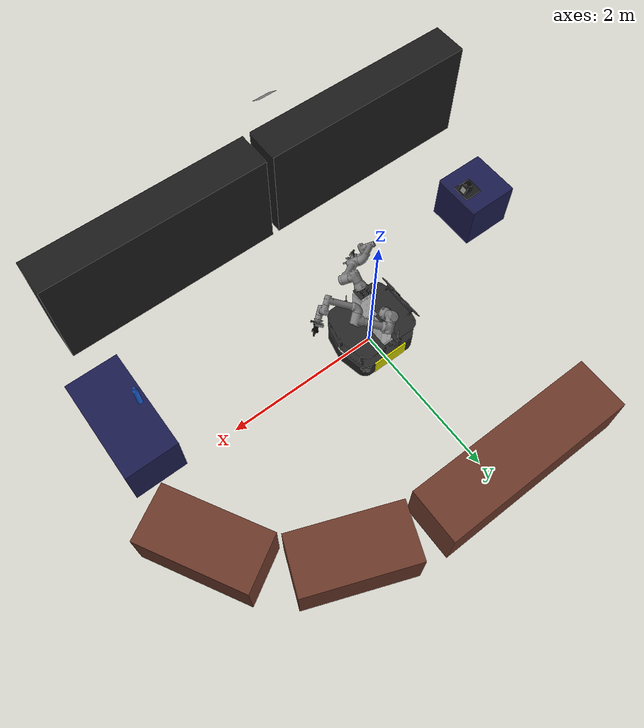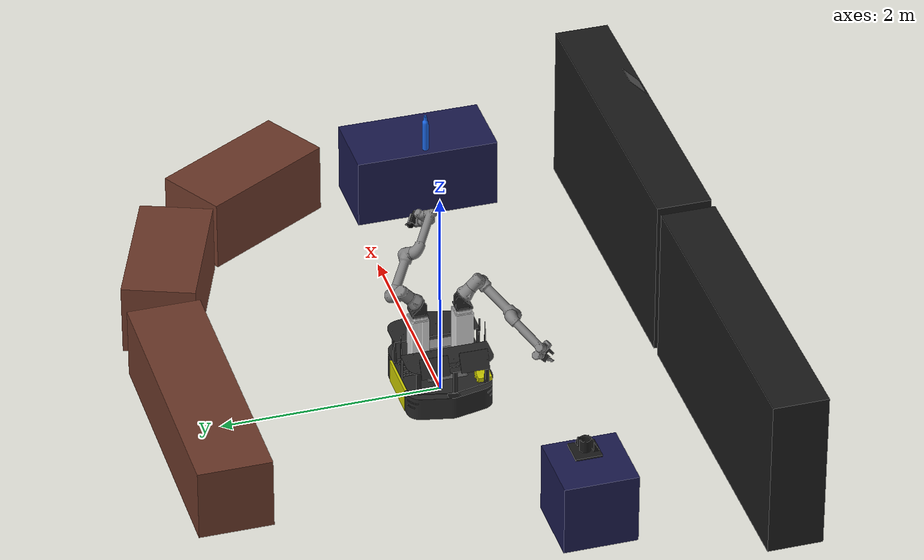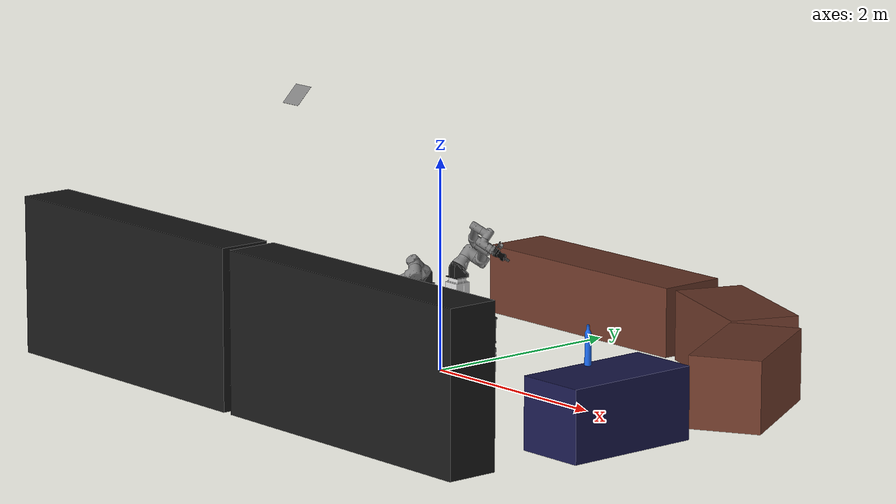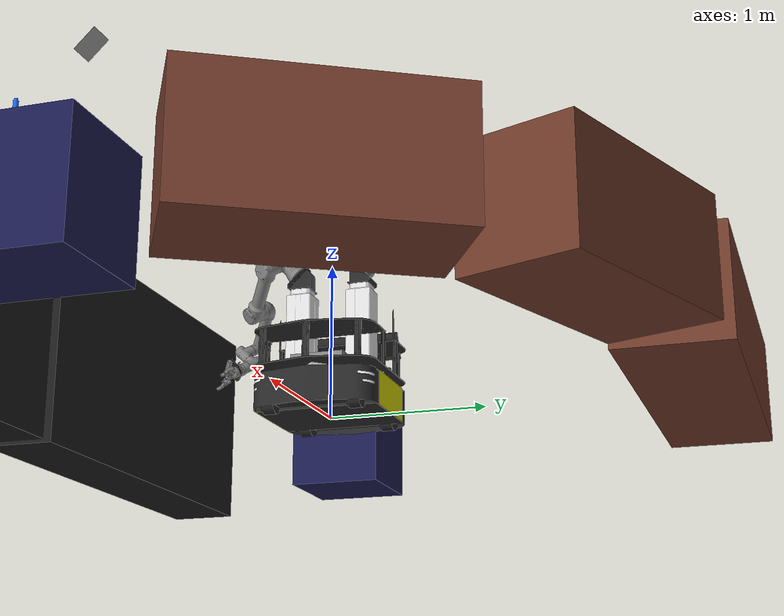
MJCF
<mujoco model="phoebe">
  <compiler angle="radian" meshdir="assets/" texturedir="assets/"/>

  <asset>
    <mesh name="body" content_type="model/obj" file="full/body.obj"/>
    <mesh name="side-cover" content_type="model/obj" file="full/side-cover.obj"/>
    <mesh name="end-cover" content_type="model/obj" file="full/end-cover.obj"/>
    <mesh name="lights" content_type="model/obj" file="full/lights.obj"/>
    <mesh name="axle" content_type="model/obj" file="full/axle.obj"/>
    <mesh name="top" content_type="model/obj" file="full/top.obj"/>
    <mesh name="rocker" content_type="model/obj" file="full/rocker.obj"/>
    <mesh name="wheel" content_type="model/obj" file="full/wheel.obj"/>
    <mesh name="lift_rails" content_type="model/obj" file="full/lift_rails.obj"/>
    <mesh name="shelf" content_type="model/obj" file="full/shelf.obj"/>
    <mesh name="monitor_hinge_base" content_type="model/obj" file="full/monitor_hinge_base.obj"/>
    <mesh name="monitor_hinge_top" content_type="model/obj" file="full/monitor_hinge_top.obj"/>
    <mesh name="monitor" content_type="model/obj" file="full/monitor.obj"/>
    <mesh name="scu" content_type="model/obj" file="full/scu.obj"/>
    <mesh name="autec_receiver" content_type="model/obj" file="full/autec_receiver.obj"/>
    <mesh name="wifi_antenna" content_type="model/obj" file="full/wifi_antenna.obj"/>
    <mesh name="autec_antenna" content_type="model/obj" file="full/autec_antenna.obj"/>
    <mesh name="lift_low_500mm" content_type="model/obj" file="full/lift_low_500mm.obj"/>
    <mesh name="lift_mid_500mm" content_type="model/obj" file="full/lift_mid_500mm.obj"/>
    <mesh name="lift_high_500mm" content_type="model/obj" file="full/lift_high_500mm.obj"/>
    <mesh name="arm_mount" content_type="model/obj" file="full/arm_mount.obj"/>
    <mesh name="base" content_type="model/obj" file="full/base.obj"/>
    <mesh name="shoulder" content_type="model/obj" file="full/shoulder.obj"/>
    <mesh name="upperarm" content_type="model/obj" file="full/upperarm.obj"/>
    <mesh name="forearm" content_type="model/obj" file="full/forearm.obj"/>
    <mesh name="wrist1" content_type="model/obj" file="full/wrist1.obj"/>
    <mesh name="wrist2" content_type="model/obj" file="full/wrist2.obj"/>
    <mesh name="wrist3" content_type="model/obj" file="full/wrist3.obj"/>
    <mesh name="mtc_robot_side" content_type="model/obj" file="full/mtc_robot_side.obj"/>
    <mesh name="mtc_effector_side" content_type="model/obj" file="full/mtc_effector_side.obj"/>
    <mesh name="ich-005_realsense_cable_mount_corr" content_type="model/obj" file="full/ich-005_realsense_cable_mount_corr.obj" scale="0.0254 0.0254 0.0254"/>
    <mesh name="robotiq_hande_cb_adapter" content_type="model/obj" file="full/robotiq_hande_cb_adapter.obj"/>
    <mesh name="robotiq_base" content_type="model/obj" file="full/robotiq_base.obj"/>
    <mesh name="left_knuckle" content_type="model/obj" file="full/left_knuckle.obj"/>
    <mesh name="right_knuckle" content_type="model/obj" file="full/right_knuckle.obj"/>
    <mesh name="left_finger" content_type="model/obj" file="full/left_finger.obj"/>
    <mesh name="right_finger" content_type="model/obj" file="full/right_finger.obj"/>
    <mesh name="left_inner_knuckle" content_type="model/obj" file="full/left_inner_knuckle.obj"/>
    <mesh name="right_inner_knuckle" content_type="model/obj" file="full/right_inner_knuckle.obj"/>
    <mesh name="left_finger_tip" content_type="model/obj" file="full/left_finger_tip.obj"/>
    <mesh name="right_finger_tip" content_type="model/obj" file="full/right_finger_tip.obj"/>
    <mesh name="hande" content_type="model/obj" file="full/hande.obj" scale="0.001 0.001 0.001"/>
    <mesh name="finger_1" content_type="model/obj" file="decomposed/finger_1/finger_1.obj" scale="0.001 0.001 0.001"/>
    <mesh name="cylinder_mockup_full_length_m" content_type="model/obj" file="full/cylinder_mockup_full_length_m.obj"/>
    <mesh name="cylinder_jig_m" content_type="model/obj" file="full/cylinder_jig_m.obj"/>
  </asset>

  <worldbody>
    <body name="base_link">
      <inertial pos="0.0151044 0.00165701 0.0943591" quat="0.717959 -0.0265943 -0.0142385 0.695432" mass="199.343" diaginertia="11.7956 10.8921 8.18537"/>
      <joint name="virtual_base_joint" type="free"/>
      <geom type="mesh" contype="0" conaffinity="0" group="1" density="0" rgba="0.15 0.15 0.15 1" mesh="body"/>
      <geom type="mesh" contype="0" conaffinity="0" group="1" density="0" rgba="0.8 0.8 0 1" mesh="side-cover"/>
      <geom pos="0 0 0" quat="0 0 0 1" type="mesh" contype="0" conaffinity="0" group="1" density="0" rgba="0.8 0.8 0 1" mesh="side-cover"/>
      <geom type="mesh" contype="0" conaffinity="0" group="1" density="0" rgba="0.15 0.15 0.15 1" mesh="end-cover"/>
      <geom pos="0 0 0" quat="0 0 0 1" type="mesh" contype="0" conaffinity="0" group="1" density="0" rgba="0.15 0.15 0.15 1" mesh="end-cover"/>
      <geom type="mesh" contype="0" conaffinity="0" group="1" density="0" rgba="1 1 1 1" mesh="lights"/>
      <geom pos="0 0 0" quat="0 0 0 1" type="mesh" contype="0" conaffinity="0" group="1" density="0" rgba="0.15 0.15 0.15 1" mesh="lights"/>
      <geom pos="0 0 0.05" quat="0.707107 0 0.707107 0" type="mesh" contype="0" conaffinity="0" group="1" density="0" rgba="0.15 0.15 0.15 1" mesh="axle"/>
      <geom pos="0.319 0 0.05" quat="0.5 0.5 0.5 0.5" type="mesh" contype="0" conaffinity="0" group="1" density="0" rgba="0.15 0.15 0.15 1" mesh="rocker"/>
      <geom pos="-0.319 0 0.05" quat="0.5 0.5 0.5 0.5" type="mesh" contype="0" conaffinity="0" group="1" density="0" rgba="0.15 0.15 0.15 1" mesh="rocker"/>
      <geom size="0.2465 0.2465 0.0275" pos="0 0 0.2475" quat="0.92388 0 0 0.382683" type="box" contype="0" conaffinity="0" group="1" density="0" rgba="0.8 0.8 0.8 1"/>
      <geom type="mesh" contype="0" conaffinity="0" group="1" density="0" rgba="0.15 0.15 0.15 1" mesh="top"/>
      <geom pos="0 0 0.28" quat="1 0 0 0" type="mesh" contype="0" conaffinity="0" group="1" density="0" rgba="0.15 0.15 0.15 1" mesh="lift_rails"/>
      <geom pos="0 0 0.28" quat="1 0 0 0" type="mesh" contype="0" conaffinity="0" group="1" density="0" rgba="0.15 0.15 0.15 1" mesh="shelf"/>
      <geom pos="0 0 0.28" quat="0 0 0 1" type="mesh" contype="0" conaffinity="0" group="1" density="0" rgba="0.15 0.15 0.15 1" mesh="shelf"/>
      <geom pos="-0.4 0 0.52635" quat="1 0 0 0" type="mesh" contype="0" conaffinity="0" group="1" density="0" rgba="0.15 0.15 0.15 1" mesh="monitor_hinge_base"/>
      <geom pos="-0.4 0 0.52635" quat="0.932327 0 0.361615 0" type="mesh" contype="0" conaffinity="0" group="1" density="0" rgba="0.15 0.15 0.15 1" mesh="monitor_hinge_top"/>
      <geom pos="-0.422796 0.18 0.560706" quat="0.932327 0 0.361615 0" type="mesh" contype="0" conaffinity="0" group="1" density="0" rgba="0.15 0.15 0.15 1" mesh="monitor"/>
      <geom pos="-0.422796 -0.18 0.560706" quat="0.932327 0 0.361615 0" type="mesh" contype="0" conaffinity="0" group="1" density="0" rgba="0.15 0.15 0.15 1" mesh="monitor"/>
      <geom pos="-0.18187 0 0.28" quat="1 0 0 0" type="mesh" contype="0" conaffinity="0" group="1" density="0" mesh="scu"/>
      <geom pos="0.18187 0 0.28" quat="0 0 0 1" type="mesh" contype="0" conaffinity="0" group="1" density="0" mesh="scu"/>
      <geom pos="-0.26 -0.29909 0.28" quat="1 0 0 0" type="mesh" contype="0" conaffinity="0" group="1" density="0" rgba="0.8 0.8 0 1" mesh="autec_receiver"/>
      <geom pos="-0.086 -0.384 0.5" quat="1 0 0 0" type="mesh" contype="0" conaffinity="0" group="1" density="0" rgba="0.15 0.15 0.15 1" mesh="wifi_antenna"/>
      <geom pos="-0.086 0.384 0.5" quat="1 0 0 0" type="mesh" contype="0" conaffinity="0" group="1" density="0" rgba="0.15 0.15 0.15 1" mesh="wifi_antenna"/>
      <geom pos="0.0845 -0.384 0.5" quat="1 0 0 0" type="mesh" contype="0" conaffinity="0" group="1" density="0" rgba="0.15 0.15 0.15 1" mesh="autec_antenna"/>
      <geom size="0.1 0.1 0.0075" pos="0 0.201 0.3275" type="box" contype="0" conaffinity="0" group="1" density="0"/>
      <geom pos="0 0.201 0.5732" type="mesh" contype="0" conaffinity="0" group="1" density="0" rgba="0.85 0.85 0.85 1" mesh="lift_low_500mm"/>
      <geom size="0.1 0.1 0.0075" pos="0 -0.201 0.3275" type="box" contype="0" conaffinity="0" group="1" density="0"/>
      <geom pos="0 -0.201 0.5732" type="mesh" contype="0" conaffinity="0" group="1" density="0" rgba="0.85 0.85 0.85 1" mesh="lift_low_500mm"/>
      <geom size="1.5 0.25 0.75" pos="1.55 -2.25 0.75" type="box" contype="0" conaffinity="0" group="1" density="0" rgba="0.1 0.1 0.1 1"/>
      <geom size="1.5 0.25 0.75" pos="-1.55 -2.25 0.75" type="box" contype="0" conaffinity="0" group="1" density="0" rgba="0.1 0.1 0.1 1"/>
      <geom size="0.333 0.666 0.333" pos="3 -0.666 0.333" type="box" contype="0" conaffinity="0" group="1" density="0" rgba="0.1 0.1 0.3 1"/>
      <geom size="0.333 0.333 0.333" pos="-2.25 -0.666 0.333" type="box" contype="0" conaffinity="0" group="1" density="0" rgba="0.1 0.1 0.3 1"/>
      <geom size="0.333 0.666 0.333" pos="3 1 0.333" quat="0.965926 0 0 0.258819" type="box" contype="0" conaffinity="0" group="1" density="0" rgba="0.42 0.22 0.16 1"/>
      <geom size="0.333 0.666 0.333" pos="1.85 2 0.333" quat="0.825336 0 0 0.564642" type="box" contype="0" conaffinity="0" group="1" density="0" rgba="0.42 0.22 0.16 1"/>
      <geom size="0.333 1.25 0.333" pos="-0.25 2.25 0.333" quat="0.707388 0 0 0.706825" type="box" contype="0" conaffinity="0" group="1" density="0" rgba="0.42 0.22 0.16 1"/>
      <geom pos="2.75 -0.666 0.665" quat="1 0 0 0" type="mesh" contype="0" conaffinity="0" group="1" density="0" rgba="0.1 0.4 0.9 1" mesh="cylinder_mockup_full_length_m"/>
      <geom pos="-2.1 -0.666 0.667" quat="-0.706824 0.00112618 4.48402e-07 -0.707388" type="mesh" contype="0" conaffinity="0" group="1" density="0" rgba="0.1 0.1 0.1 1" mesh="cylinder_jig_m"/>
      <geom size="0.0365 0.0365 0.001" pos="-2.10003 -0.754895 0.733142" quat="-0.000690986 0.000397094 -0.867819 -0.496881" type="box" contype="0" conaffinity="0" group="1" density="0"/>
      <geom size="0.0365 0.0365 0.001" pos="-2.01111 -0.665824 0.733142" quat="-0.612831 -0.352193 -0.35345 -0.612757" type="box" contype="0" conaffinity="0" group="1" density="0"/>
      <geom size="0.107 0.107 0.001" pos="0.134059 -1.78874 2.82267" quat="1.2259e-06 -5.07498e-07 -0.382499 0.923956" type="box" contype="0" conaffinity="0" group="1" density="0"/>
      <body name="front_left_wheel_link" pos="0.319 0.2755 0.05">
        <inertial pos="0 0 0" quat="0.707107 0 0 0.707107" mass="2.5" diaginertia="0.00720101 0.00490071 0.00490071"/>
        <joint name="front_left_wheel_joint" pos="0 0 0" axis="0 1 0"/>
        <geom quat="0.707107 0.707107 0 0" type="mesh" contype="0" conaffinity="0" group="1" density="0" rgba="0.15 0.15 0.15 1" mesh="wheel"/>
      </body>
      <body name="front_right_wheel_link" pos="0.319 -0.2755 0.05">
        <inertial pos="0 0 0" quat="0.707107 0 0 0.707107" mass="2.5" diaginertia="0.00720101 0.00490071 0.00490071"/>
        <joint name="front_right_wheel_joint" pos="0 0 0" axis="0 1 0"/>
        <geom quat="0.707107 0.707107 0 0" type="mesh" contype="0" conaffinity="0" group="1" density="0" rgba="0.15 0.15 0.15 1" mesh="wheel"/>
      </body>
      <body name="rear_left_wheel_link" pos="-0.319 0.2755 0.05">
        <inertial pos="0 0 0" quat="0.707107 0 0 0.707107" mass="2.5" diaginertia="0.00720101 0.00490071 0.00490071"/>
        <joint name="rear_left_wheel_joint" pos="0 0 0" axis="0 1 0"/>
        <geom quat="0.707107 0.707107 0 0" type="mesh" contype="0" conaffinity="0" group="1" density="0" rgba="0.15 0.15 0.15 1" mesh="wheel"/>
      </body>
      <body name="rear_right_wheel_link" pos="-0.319 -0.2755 0.05">
        <inertial pos="0 0 0" quat="0.707107 0 0 0.707107" mass="2.5" diaginertia="0.00720101 0.00490071 0.00490071"/>
        <joint name="rear_right_wheel_joint" pos="0 0 0" axis="0 1 0"/>
        <geom quat="0.707107 0.707107 0 0" type="mesh" contype="0" conaffinity="0" group="1" density="0" rgba="0.15 0.15 0.15 1" mesh="wheel"/>
      </body>
      <body name="left_ewellix_lift_higher_link" pos="0 0.201 0.61">
        <inertial pos="-0.00482427 -0.148669 0.00425385" quat="0.720984 0.692716 -0.015659 -0.00896105" mass="9.32488" diaginertia="0.405814 0.305322 0.130687"/>
        <joint name="left_ewellix_lift_lower_to_higher" pos="0 0 0" axis="0 0 1" type="slide" range="0 0.5" actuatorfrcrange="-1000 1000"/>
        <geom type="mesh" contype="0" conaffinity="0" group="1" density="0" rgba="0.85 0.85 0.85 1" mesh="lift_high_500mm"/>
        <geom pos="0 0 0.245" quat="1 0 0 0" type="mesh" contype="0" conaffinity="0" group="1" density="0" rgba="0.15 0.15 0.15 1" mesh="arm_mount"/>
        <geom pos="0.00991665 0.0112464 0.346581" quat="-0.856843 0.350748 0.134633 0.353087" type="mesh" contype="0" conaffinity="0" group="1" density="0" mesh="base"/>
        <body name="left_ewellix_lift_middle_link" pos="0 0 -0.0303">
          <inertial pos="0 0 0" mass="5.4116" diaginertia="0.11963 0.11963 0.0330997"/>
          <joint name="left_middle_mimic_higher" pos="0 0 0" axis="0 0 -1" type="slide" range="0 0.25" actuatorfrcrange="-1000 1000"/>
          <geom type="mesh" contype="0" conaffinity="0" group="1" density="0" rgba="0.85 0.85 0.85 1" mesh="lift_mid_500mm"/>
        </body>
        <body name="left_ur_arm_shoulder_link" pos="0.0126802 0.124615 0.463459" quat="0.353086 -0.134633 0.350748 0.856843">
          <inertial pos="0 -0.00193 -0.02561" quat="0.560239 0.250606 -0.316559 0.72327" mass="3.761" diaginertia="0.00703079 0.0070003 0.00602478"/>
          <joint name="left_ur_arm_shoulder_pan_joint" pos="0 0 0" axis="0 0 1" range="-6.28319 6.28319" actuatorfrcrange="-150 150"/>
          <geom quat="0 0 0 1" type="mesh" contype="0" conaffinity="0" group="1" density="0" mesh="shoulder"/>
          <body name="left_ur_arm_upper_arm_link" pos="0.000226782 0 0" quat="0.707115 0.707098 -9.55133e-07 -9.55157e-07">
            <inertial pos="-0.2125 0 0.11336" quat="0.500275 0.499641 0.500368 0.499716" mass="8.058" diaginertia="0.333881 0.332472 0.0150588"/>
            <joint name="left_ur_arm_shoulder_lift_joint" pos="0 0 0" axis="0 0 1" range="-6.28319 6.28319" actuatorfrcrange="-150 150"/>
            <geom pos="0 0 0.138" quat="0.5 0.5 -0.5 -0.5" type="mesh" contype="0" conaffinity="0" group="1" density="0" mesh="upperarm"/>
            <body name="left_ur_arm_forearm_link" pos="-0.425505 0 0" quat="1 2.07226e-05 -0.000262987 -7.61405e-08">
              <inertial pos="-0.2422 0 0.0265" quat="0.501301 0.498381 0.510711 0.489375" mass="2.846" diaginertia="0.0787927 0.0785102 0.00397103"/>
              <joint name="left_ur_arm_elbow_joint" pos="0 0 0" axis="0 0 1" range="-3.14159 3.14159" actuatorfrcrange="-150 150"/>
              <geom pos="0 0 0.007" quat="0.5 0.5 -0.5 -0.5" type="mesh" contype="0" conaffinity="0" group="1" density="0" mesh="forearm"/>
              <body name="left_ur_arm_wrist_1_link" pos="-0.392582 -4.63122e-05 0.133721" quat="1 0.000173166 0.000544517 1.77883e-06">
                <inertial pos="0 -0.01634 -0.0018" quat="0.960609 0.277707 0.00515042 -0.00913626" mass="1.37" diaginertia="0.00165502 0.00142363 0.00119868"/>
                <joint name="left_ur_arm_wrist_1_joint" pos="0 0 0" axis="0 0 1" range="-6.28319 6.28319" actuatorfrcrange="-28 28"/>
                <geom pos="0 0 -0.127" quat="0.707107 0.707107 0 0" type="mesh" contype="0" conaffinity="0" group="1" density="0" mesh="wrist1"/>
                <body name="left_ur_arm_wrist_2_link" pos="1.36989e-05 -0.0999777 8.48591e-05" quat="0.707407 0.706807 -4.64337e-08 -4.64731e-08">
                  <inertial pos="0 0.01634 -0.0018" quat="0.996652 -0.0779336 -0.00684629 -0.0237381" mass="1.3" diaginertia="0.00135637 0.00128607 0.00095814"/>
                  <joint name="left_ur_arm_wrist_2_joint" pos="0 0 0" axis="0 0 1" range="-6.28319 6.28319" actuatorfrcrange="-28 28"/>
                  <geom pos="0 0 -0.0997" quat="1 0 0 0" type="mesh" contype="0" conaffinity="0" group="1" density="0" mesh="wrist2"/>
                  <body name="left_ur_arm_wrist_3_link" pos="0.000106733 0.0996158 1.94962e-05" quat="-0.707176 0.707038 1.93623e-08 -1.93661e-08">
                    <inertial pos="0.000839754 -0.00316796 0.065463" quat="0.989723 0.0369367 -0.0056945 0.13803" mass="1.31087" diaginertia="0.0076687 0.00740859 0.00153548"/>
                    <joint name="left_ur_arm_wrist_3_joint" pos="0 0 0" axis="0 0 1" range="-6.28319 6.28319" actuatorfrcrange="-28 28"/>
                    <geom pos="0 0 -0.0989" quat="0.707107 0.707107 0 0" type="mesh" contype="0" conaffinity="0" group="1" density="0" mesh="wrist3"/>
                    <geom quat="0 0 0 1" type="mesh" contype="0" conaffinity="0" group="1" density="0" mesh="mtc_robot_side"/>
                    <geom pos="0 0 0.009" quat="0 0 0 1" type="mesh" contype="0" conaffinity="0" group="1" density="0" mesh="mtc_effector_side"/>
                    <geom pos="0 0 0.033" quat="-0.707107 0 0 0.707107" type="mesh" contype="0" conaffinity="0" group="1" density="0" rgba="0.1 0.1 0.1 1" mesh="ich-005_realsense_cable_mount_corr"/>
                    <geom size="0.012525 0.045 0.0125" pos="0.000178732 0.0759414 0.0578834" quat="-0.53321 0.471099 0.468121 0.524037" type="box" contype="0" conaffinity="0" group="1" density="0"/>
                    <geom pos="0 0 0.036" quat="-1 0 0 0" type="mesh" contype="0" conaffinity="0" group="1" density="0" rgba="0 0 0 1" mesh="robotiq_hande_cb_adapter"/>
                    <geom pos="0 0 0.047" quat="-1 0 0 0" type="mesh" contype="0" conaffinity="0" group="1" density="0" rgba="0 0 0 1" mesh="hande"/>
                    <body name="left_finger_1_link" pos="0.025 0 0.146" quat="0 0 0 -1">
                      <inertial pos="-0.02262 0.00759 0.00738" quat="0.871952 -0.0369732 0.211073 0.440205" mass="0.03804" diaginertia="1.22763e-05 1.22763e-05 1.22763e-05"/>
                      <joint name="left_finger_1_joint" pos="0 0 0" axis="1 0 0" type="slide" range="0 0.025" actuatorfrcrange="-130 130"/>
                      <geom type="mesh" contype="0" conaffinity="0" group="1" density="0" rgba="0.2 0.2 0.2 1" mesh="finger_1"/>
                    </body>
                    <body name="left_finger_2_link" pos="-0.025 0 0.146" quat="-1 0 0 0">
                      <inertial pos="0.02262 -0.00759 0.00738" quat="0.871952 0.0369732 -0.211073 0.440205" mass="0.03804" diaginertia="1.22763e-05 1.22763e-05 1.22763e-05"/>
                      <joint name="left_finger_2_joint" pos="0 0 0" axis="1 0 0" type="slide" range="0 0.025" actuatorfrcrange="-130 130"/>
                      <geom type="mesh" contype="0" conaffinity="0" group="1" density="0" rgba="0.2 0.2 0.2 1" mesh="finger_1"/>
                    </body>
                  </body>
                </body>
              </body>
            </body>
          </body>
        </body>
      </body>
      <body name="right_ewellix_lift_higher_link" pos="0 -0.201 0.61">
        <inertial pos="0.00637989 -0.148041 0.0049205" quat="0.723505 0.689931 0.0192834 0.0128102" mass="9.32488" diaginertia="0.403789 0.303364 0.130628"/>
        <joint name="right_ewellix_lift_lower_to_higher" pos="0 0 0" axis="0 0 1" type="slide" range="0 0.5" actuatorfrcrange="-1000 1000"/>
        <geom type="mesh" contype="0" conaffinity="0" group="1" density="0" rgba="0.85 0.85 0.85 1" mesh="lift_high_500mm"/>
        <geom pos="0 0 0.245" quat="0 0 0 1" type="mesh" contype="0" conaffinity="0" group="1" density="0" rgba="0.15 0.15 0.15 1" mesh="arm_mount"/>
        <geom pos="0.0114708 -0.0148729 0.345116" quat="-0.348645 -0.131976 -0.353915 0.857772" type="mesh" contype="0" conaffinity="0" group="1" density="0" mesh="base"/>
        <body name="right_ewellix_lift_middle_link" pos="0 0 -0.0303">
          <inertial pos="0 0 0" mass="5.4116" diaginertia="0.11963 0.11963 0.0330997"/>
          <joint name="right_middle_mimic_higher" pos="0 0 0" axis="0 0 -1" type="slide" range="0 0.25" actuatorfrcrange="-1000 1000"/>
          <geom type="mesh" contype="0" conaffinity="0" group="1" density="0" rgba="0.85 0.85 0.85 1" mesh="lift_mid_500mm"/>
        </body>
        <body name="right_ur_arm_shoulder_link" pos="0.0147855 -0.128643 0.461404" quat="0.857772 0.353915 -0.131976 0.348645">
          <inertial pos="0 -0.00193 -0.02561" quat="0.560239 0.250606 -0.316559 0.72327" mass="3.761" diaginertia="0.00703079 0.0070003 0.00602478"/>
          <joint name="right_ur_arm_shoulder_pan_joint" pos="0 0 0" axis="0 0 1" range="-6.28319 6.28319" actuatorfrcrange="-150 150"/>
          <geom quat="0 0 0 1" type="mesh" contype="0" conaffinity="0" group="1" density="0" mesh="shoulder"/>
          <body name="right_ur_arm_upper_arm_link" pos="7.08681e-05 0 0" quat="0.707305 0.706908 1.4235e-06 1.4243e-06">
            <inertial pos="-0.2125 0 0.11336" quat="0.500275 0.499641 0.500368 0.499716" mass="8.058" diaginertia="0.333881 0.332472 0.0150588"/>
            <joint name="right_ur_arm_shoulder_lift_joint" pos="0 0 0" axis="0 0 1" range="-6.28319 6.28319" actuatorfrcrange="-150 150"/>
            <geom pos="0 0 0.138" quat="0.5 0.5 -0.5 -0.5" type="mesh" contype="0" conaffinity="0" group="1" density="0" mesh="upperarm"/>
            <body name="right_ur_arm_forearm_link" pos="-0.425304 0 0" quat="1 9.70614e-05 0.000269354 4.69205e-07">
              <inertial pos="-0.2422 0 0.0265" quat="0.501301 0.498381 0.510711 0.489375" mass="2.846" diaginertia="0.0787927 0.0785102 0.00397103"/>
              <joint name="right_ur_arm_elbow_joint" pos="0 0 0" axis="0 0 1" range="-3.14159 3.14159" actuatorfrcrange="-150 150"/>
              <geom pos="0 0 0.007" quat="0.5 0.5 -0.5 -0.5" type="mesh" contype="0" conaffinity="0" group="1" density="0" mesh="forearm"/>
              <body name="right_ur_arm_wrist_1_link" pos="-0.392184 8.85386e-05 0.134008" quat="1 -0.000330347 0.000508859 -1.44648e-06">
                <inertial pos="0 -0.01634 -0.0018" quat="0.960609 0.277707 0.00515042 -0.00913626" mass="1.37" diaginertia="0.00165502 0.00142363 0.00119868"/>
                <joint name="right_ur_arm_wrist_1_joint" pos="0 0 0" axis="0 0 1" range="-6.28319 6.28319" actuatorfrcrange="-28 28"/>
                <geom pos="0 0 -0.127" quat="0.707107 0.707107 0 0" type="mesh" contype="0" conaffinity="0" group="1" density="0" mesh="wrist1"/>
                <body name="right_ur_arm_wrist_2_link" pos="3.88504e-05 -0.0998073 8.22332e-05" quat="0.707398 0.706815 2.04332e-07 2.045e-07">
                  <inertial pos="0 0.01634 -0.0018" quat="0.996652 -0.0779336 -0.00684629 -0.0237381" mass="1.3" diaginertia="0.00135637 0.00128607 0.00095814"/>
                  <joint name="right_ur_arm_wrist_2_joint" pos="0 0 0" axis="0 0 1" range="-6.28319 6.28319" actuatorfrcrange="-28 28"/>
                  <geom pos="0 0 -0.0997" quat="1 0 0 0" type="mesh" contype="0" conaffinity="0" group="1" density="0" mesh="wrist2"/>
                  <body name="right_ur_arm_wrist_3_link" pos="7.98405e-05 0.0996341 1.16486e-05" quat="-0.707148 0.707065 4.07248e-09 -4.07295e-09">
                    <inertial pos="0.000959276 -0.00363967 0.0520803" quat="0.986219 0.0493742 -0.011881 0.157459" mass="1.1102" diaginertia="0.0064241 0.00624497 0.00141296"/>
                    <joint name="right_ur_arm_wrist_3_joint" pos="0 0 0" axis="0 0 1" range="-6.28319 6.28319" actuatorfrcrange="-28 28"/>
                    <geom pos="0 0 -0.0989" quat="0.707107 0.707107 0 0" type="mesh" contype="0" conaffinity="0" group="1" density="0" mesh="wrist3"/>
                    <geom quat="0 0 0 1" type="mesh" contype="0" conaffinity="0" group="1" density="0" mesh="mtc_robot_side"/>
                    <geom pos="0 0 0.009" quat="0 0 0 1" type="mesh" contype="0" conaffinity="0" group="1" density="0" mesh="mtc_effector_side"/>
                    <geom pos="0 0 0.033" quat="-0.707107 0 0 0.707107" type="mesh" contype="0" conaffinity="0" group="1" density="0" rgba="0.1 0.1 0.1 1" mesh="ich-005_realsense_cable_mount_corr"/>
                    <geom size="0.012525 0.045 0.0125" pos="-0.00270487 0.0729183 0.0570653" quat="-0.53474 0.464316 0.473489 0.523709" type="box" contype="0" conaffinity="0" group="1" density="0"/>
                    <geom pos="0 0 0.036" quat="-1 0 0 0" type="mesh" contype="0" conaffinity="0" group="1" density="0" rgba="0 0 0 1" mesh="robotiq_hande_cb_adapter"/>
                    <geom pos="0 0 0.047" quat="-1 0 0 0" type="mesh" contype="0" conaffinity="0" group="1" density="0" mesh="robotiq_base"/>
                    <body name="right_robotiq_85_left_knuckle_link" pos="0.0306011 0 0.101905" quat="-1 0 0 0">
                      <inertial pos="0.0280921 -0.000550523 0.00570126" quat="0.699112 0.212074 0.213677 0.648544" mass="0.0564515" diaginertia="1.95637e-05 1.76663e-05 9.3792e-06"/>
                      <joint name="right_robotiq_85_left_knuckle_joint" pos="0 0 0" axis="0 -1 0" range="0 0.8" actuatorfrcrange="-50 50"/>
                      <geom type="mesh" contype="0" conaffinity="0" group="1" density="0" mesh="left_knuckle"/>
                      <geom pos="0.0315262 0 -0.00376347" type="mesh" contype="0" conaffinity="0" group="1" density="0" mesh="left_finger"/>
                      <body name="right_robotiq_85_left_finger_tip_link" pos="0.0371575 0 0.0434217">
                        <inertial pos="-0.0145671 -0.0008 0.016497" quat="0.977773 0 -0.209665 0" mass="0.0426859" diaginertia="1.20653e-05 1.19789e-05 2.64405e-06"/>
                        <joint name="right_robotiq_85_left_finger_tip_joint" pos="0 0 0" axis="0 -1 0"/>
                        <geom type="mesh" contype="0" conaffinity="0" group="1" density="0" mesh="left_finger_tip"/>
                      </body>
                    </body>
                    <body name="right_robotiq_85_right_knuckle_link" pos="-0.0306011 0 0.101905" quat="-1 0 0 0">
                      <inertial pos="-0.0280921 4.48872e-05 0.00570126" quat="0.669099 -0.212862 -0.212522 0.679581" mass="0.0564515" diaginertia="1.95514e-05 1.7665e-05 9.37296e-06"/>
                      <joint name="right_robotiq_85_right_knuckle_joint" pos="0 0 0" axis="0 -1 0" range="-0.8 0" actuatorfrcrange="-50 50"/>
                      <geom type="mesh" contype="0" conaffinity="0" group="1" density="0" mesh="right_knuckle"/>
                      <geom pos="-0.0315262 0 -0.00376347" type="mesh" contype="0" conaffinity="0" group="1" density="0" mesh="right_finger"/>
                      <body name="right_robotiq_85_right_finger_tip_link" pos="-0.0371575 0 0.0434217">
                        <inertial pos="0.0145671 5e-05 0.016497" quat="0.977773 0 0.209665 0" mass="0.0426859" diaginertia="1.20653e-05 1.19789e-05 2.64405e-06"/>
                        <joint name="right_robotiq_85_right_finger_tip_joint" pos="0 0 0" axis="0 -1 0"/>
                        <geom type="mesh" contype="0" conaffinity="0" group="1" density="0" mesh="right_finger_tip"/>
                      </body>
                    </body>
                    <body name="right_robotiq_85_left_inner_knuckle_link" pos="0.0127 0 0.10842" quat="-1 0 0 0">
                      <inertial pos="0.018977 0.00015001 0.022471" quat="0.939613 0 0.342237 0" mass="0.0296938" diaginertia="1.28757e-05 8.69056e-06 4.88712e-06"/>
                      <joint name="right_robotiq_85_left_inner_knuckle_joint" pos="0 0 0" axis="0 -1 0"/>
                      <geom type="mesh" contype="0" conaffinity="0" group="1" density="0" mesh="left_inner_knuckle"/>
                    </body>
                    <body name="right_robotiq_85_right_inner_knuckle_link" pos="-0.0127 0 0.10842" quat="-1 0 0 0">
                      <inertial pos="-0.0192682 5.001e-05 0.0222218" quat="0.936371 0 -0.351012 0" mass="0.0296938" diaginertia="1.2882e-05 8.69056e-06 4.88076e-06"/>
                      <joint name="right_robotiq_85_right_inner_knuckle_joint" pos="0 0 0" axis="0 -1 0"/>
                      <geom type="mesh" contype="0" conaffinity="0" group="1" density="0" mesh="right_inner_knuckle"/>
                    </body>
                  </body>
                </body>
              </body>
            </body>
          </body>
        </body>
      </body>
    </body>
  </worldbody>
</mujoco>
